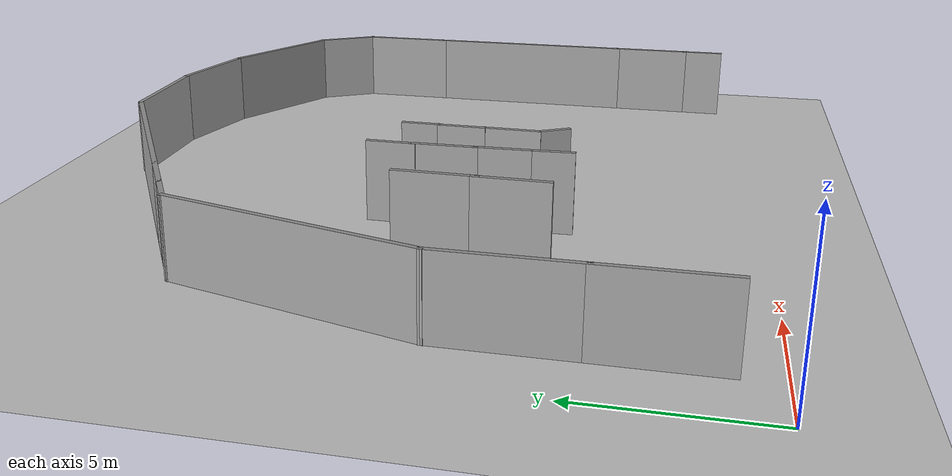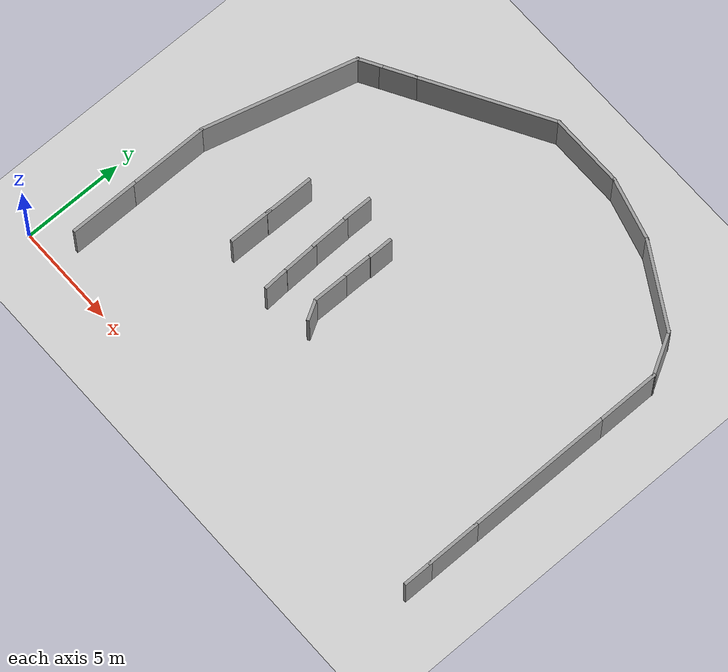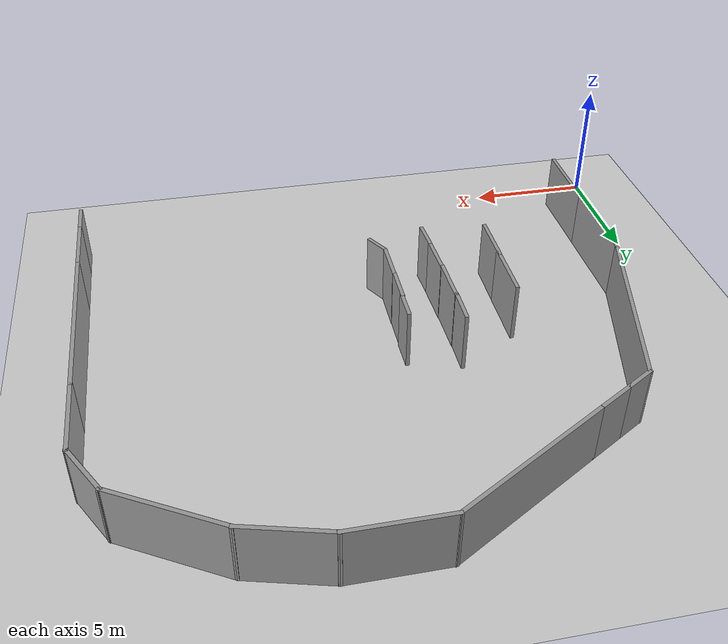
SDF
<sdf version="1.6">
 <world name="default">
  <model name="ground_plane">
   <static>1</static>
   <link name="link">
    <collision name="collision">
     <geometry><plane><normal>0 0 1</normal><size>100 100</size></plane></geometry>
     <surface><friction><ode><mu>100</mu><mu2>50</mu2></ode></friction></surface>
    </collision>
    <visual name="visual">
     <cast_shadows>0</cast_shadows>
     <geometry><plane><normal>0 0 1</normal><size>100 100</size></plane></geometry>
     <material>
      <script><uri>file://media/materials/scripts/gazebo.material</uri><name>Gazebo/Grey</name></script>
     </material>
    </visual>
   </link>
  </model>
  <model name="c-Snail_v3_clone">
   <link name="Wall_19">
    <pose>0.800174 -5.81597 0 0 -0 0</pose>
    <visual name="Wall_19_Visual">
     <pose>0 0 1.25 0 -0 0</pose>
     <geometry><box><size>2.25 0.15 2.5</size></box></geometry>
     <material>
      <script><uri>file://media/materials/scripts/gazebo.material</uri><name>Gazebo/Grey</name></script>
      <ambient>1 1 1 1</ambient>
     </material>
     <meta><layer>0</layer></meta>
    </visual>
    <collision name="Wall_19_Collision">
     <pose>0 0 1.25 0 -0 0</pose>
     <geometry><box><size>2.25 0.15 2.5</size></box></geometry>
     <surface>
      <friction>
       <ode><mu>1</mu><mu2>1</mu2><fdir1>0 0 0</fdir1><slip1>0</slip1><slip2>0</slip2></ode>
       <torsional>
        <coefficient>1</coefficient>
        <patch_radius>0</patch_radius>
        <surface_radius>0</surface_radius>
        <use_patch_radius>1</use_patch_radius>
        <ode><slip>0</slip></ode>
       </torsional>
      </friction>
      <bounce><restitution_coefficient>0</restitution_coefficient><threshold>1e+06</threshold></bounce>
      <contact>
       <collide_without_contact>0</collide_without_contact>
       <collide_without_contact_bitmask>1</collide_without_contact_bitmask>
       <collide_bitmask>1</collide_bitmask>
       <ode>
        <soft_cfm>0</soft_cfm>
        <soft_erp>0.2</soft_erp>
        <kp>1e+13</kp>
        <kd>1</kd>
        <max_vel>0.01</max_vel>
        <min_depth>0</min_depth>
       </ode>
       <bullet>
        <split_impulse>1</split_impulse>
        <split_impulse_penetration_threshold>-0.01</split_impulse_penetration_threshold>
        <soft_cfm>0</soft_cfm>
        <soft_erp>0.2</soft_erp>
        <kp>1e+13</kp>
        <kd>1</kd>
       </bullet>
      </contact>
     </surface>
    </collision>
   </link>
   <link name="Wall_20">
    <pose>2.90214 -5.80096 0 0 -0 0</pose>
    <visual name="Wall_20_Visual">
     <pose>0 0 1.25 0 -0 0</pose>
     <geometry><box><size>2.5 0.15 2.5</size></box></geometry>
     <material>
      <script><uri>file://media/materials/scripts/gazebo.material</uri><name>Gazebo/Grey</name></script>
      <ambient>1 1 1 1</ambient>
     </material>
     <meta><layer>0</layer></meta>
    </visual>
    <collision name="Wall_20_Collision">
     <pose>0 0 1.25 0 -0 0</pose>
     <geometry><box><size>2.5 0.15 2.5</size></box></geometry>
     <surface>
      <friction>
       <ode><mu>1</mu><mu2>1</mu2><fdir1>0 0 0</fdir1><slip1>0</slip1><slip2>0</slip2></ode>
       <torsional>
        <coefficient>1</coefficient>
        <patch_radius>0</patch_radius>
        <surface_radius>0</surface_radius>
        <use_patch_radius>1</use_patch_radius>
        <ode><slip>0</slip></ode>
       </torsional>
      </friction>
      <bounce><restitution_coefficient>0</restitution_coefficient><threshold>1e+06</threshold></bounce>
      <contact>
       <collide_without_contact>0</collide_without_contact>
       <collide_without_contact_bitmask>1</collide_without_contact_bitmask>
       <collide_bitmask>1</collide_bitmask>
       <ode>
        <soft_cfm>0</soft_cfm>
        <soft_erp>0.2</soft_erp>
        <kp>1e+13</kp>
        <kd>1</kd>
        <max_vel>0.01</max_vel>
        <min_depth>0</min_depth>
       </ode>
       <bullet>
        <split_impulse>1</split_impulse>
        <split_impulse_penetration_threshold>-0.01</split_impulse_penetration_threshold>
        <soft_cfm>0</soft_cfm>
        <soft_erp>0.2</soft_erp>
        <kp>1e+13</kp>
        <kd>1</kd>
       </bullet>
      </contact>
     </surface>
    </collision>
   </link>
   <link name="Wall_46">
    <pose>0.001242 -3.22352 -0 0 0 -0.065231</pose>
    <visual name="Wall_46_Visual">
     <pose>0 0 1.25 0 -0 0</pose>
     <geometry><box><size>1.25 0.15 2.5</size></box></geometry>
     <material>
      <script><uri>file://media/materials/scripts/gazebo.material</uri><name>Gazebo/Grey</name></script>
      <ambient>1 1 1 1</ambient>
     </material>
     <meta><layer>0</layer></meta>
    </visual>
    <collision name="Wall_46_Collision">
     <pose>0 0 1.25 0 -0 0</pose>
     <geometry><box><size>1.25 0.15 2.5</size></box></geometry>
     <surface>
      <friction>
       <ode><mu>1</mu><mu2>1</mu2><fdir1>0 0 0</fdir1><slip1>0</slip1><slip2>0</slip2></ode>
       <torsional>
        <coefficient>1</coefficient>
        <patch_radius>0</patch_radius>
        <surface_radius>0</surface_radius>
        <use_patch_radius>1</use_patch_radius>
        <ode><slip>0</slip></ode>
       </torsional>
      </friction>
      <bounce><restitution_coefficient>0</restitution_coefficient><threshold>1e+06</threshold></bounce>
      <contact>
       <collide_without_contact>0</collide_without_contact>
       <collide_without_contact_bitmask>1</collide_without_contact_bitmask>
       <collide_bitmask>1</collide_bitmask>
       <ode>
        <soft_cfm>0</soft_cfm>
        <soft_erp>0.2</soft_erp>
        <kp>1e+13</kp>
        <kd>1</kd>
        <max_vel>0.01</max_vel>
        <min_depth>0</min_depth>
       </ode>
       <bullet>
        <split_impulse>1</split_impulse>
        <split_impulse_penetration_threshold>-0.01</split_impulse_penetration_threshold>
        <soft_cfm>0</soft_cfm>
        <soft_erp>0.2</soft_erp>
        <kp>1e+13</kp>
        <kd>1</kd>
       </bullet>
      </contact>
     </surface>
    </collision>
   </link>
   <link name="Wall_47">
    <pose>1.4692 -3.29142 0 0 0 -0.040966</pose>
    <visual name="Wall_47_Visual">
     <pose>0 0 1.25 0 -0 0</pose>
     <geometry><box><size>1.75 0.15 2.5</size></box></geometry>
     <material>
      <script><uri>file://media/materials/scripts/gazebo.material</uri><name>Gazebo/Grey</name></script>
      <ambient>1 1 1 1</ambient>
     </material>
     <meta><layer>0</layer></meta>
    </visual>
    <collision name="Wall_47_Collision">
     <pose>0 0 1.25 0 -0 0</pose>
     <geometry><box><size>1.75 0.15 2.5</size></box></geometry>
     <surface>
      <friction>
       <ode><mu>1</mu><mu2>1</mu2><fdir1>0 0 0</fdir1><slip1>0</slip1><slip2>0</slip2></ode>
       <torsional>
        <coefficient>1</coefficient>
        <patch_radius>0</patch_radius>
        <surface_radius>0</surface_radius>
        <use_patch_radius>1</use_patch_radius>
        <ode><slip>0</slip></ode>
       </torsional>
      </friction>
      <bounce><restitution_coefficient>0</restitution_coefficient><threshold>1e+06</threshold></bounce>
      <contact>
       <collide_without_contact>0</collide_without_contact>
       <collide_without_contact_bitmask>1</collide_without_contact_bitmask>
       <collide_bitmask>1</collide_bitmask>
       <ode>
        <soft_cfm>0</soft_cfm>
        <soft_erp>0.2</soft_erp>
        <kp>1e+13</kp>
        <kd>1</kd>
        <max_vel>0.01</max_vel>
        <min_depth>0</min_depth>
       </ode>
       <bullet>
        <split_impulse>1</split_impulse>
        <split_impulse_penetration_threshold>-0.01</split_impulse_penetration_threshold>
        <soft_cfm>0</soft_cfm>
        <soft_erp>0.2</soft_erp>
        <kp>1e+13</kp>
        <kd>1</kd>
       </bullet>
      </contact>
     </surface>
    </collision>
   </link>
   <link name="Wall_48">
    <pose>3.18497 -3.36606 0 0 0 -0.02609</pose>
    <visual name="Wall_48_Visual">
     <pose>0 0 1.25 0 -0 0</pose>
     <geometry><box><size>2 0.15 2.5</size></box></geometry>
     <material>
      <script><uri>file://media/materials/scripts/gazebo.material</uri><name>Gazebo/Grey</name></script>
      <ambient>1 1 1 1</ambient>
     </material>
     <meta><layer>0</layer></meta>
    </visual>
    <collision name="Wall_48_Collision">
     <pose>0 0 1.25 0 -0 0</pose>
     <geometry><box><size>2 0.15 2.5</size></box></geometry>
     <surface>
      <friction>
       <ode><mu>1</mu><mu2>1</mu2><fdir1>0 0 0</fdir1><slip1>0</slip1><slip2>0</slip2></ode>
       <torsional>
        <coefficient>1</coefficient>
        <patch_radius>0</patch_radius>
        <surface_radius>0</surface_radius>
        <use_patch_radius>1</use_patch_radius>
        <ode><slip>0</slip></ode>
       </torsional>
      </friction>
      <bounce><restitution_coefficient>0</restitution_coefficient><threshold>1e+06</threshold></bounce>
      <contact>
       <collide_without_contact>0</collide_without_contact>
       <collide_without_contact_bitmask>1</collide_without_contact_bitmask>
       <collide_bitmask>1</collide_bitmask>
       <ode>
        <soft_cfm>0</soft_cfm>
        <soft_erp>0.2</soft_erp>
        <kp>1e+13</kp>
        <kd>1</kd>
        <max_vel>0.01</max_vel>
        <min_depth>0</min_depth>
       </ode>
       <bullet>
        <split_impulse>1</split_impulse>
        <split_impulse_penetration_threshold>-0.01</split_impulse_penetration_threshold>
        <soft_cfm>0</soft_cfm>
        <soft_erp>0.2</soft_erp>
        <kp>1e+13</kp>
        <kd>1</kd>
       </bullet>
      </contact>
     </surface>
    </collision>
   </link>
   <link name="Wall_49">
    <pose>4.78497 -3.4097 0 0 -0 0</pose>
    <visual name="Wall_49_Visual">
     <pose>0 0 1.25 0 -0 0</pose>
     <geometry><box><size>1.5 0.15 2.5</size></box></geometry>
     <material>
      <script><uri>file://media/materials/scripts/gazebo.material</uri><name>Gazebo/Grey</name></script>
      <ambient>1 1 1 1</ambient>
     </material>
     <meta><layer>0</layer></meta>
    </visual>
    <collision name="Wall_49_Collision">
     <pose>0 0 1.25 0 -0 0</pose>
     <geometry><box><size>1.5 0.15 2.5</size></box></geometry>
     <surface>
      <friction>
       <ode><mu>1</mu><mu2>1</mu2><fdir1>0 0 0</fdir1><slip1>0</slip1><slip2>0</slip2></ode>
       <torsional>
        <coefficient>1</coefficient>
        <patch_radius>0</patch_radius>
        <surface_radius>0</surface_radius>
        <use_patch_radius>1</use_patch_radius>
        <ode><slip>0</slip></ode>
       </torsional>
      </friction>
      <bounce><restitution_coefficient>0</restitution_coefficient><threshold>1e+06</threshold></bounce>
      <contact>
       <collide_without_contact>0</collide_without_contact>
       <collide_without_contact_bitmask>1</collide_without_contact_bitmask>
       <collide_bitmask>1</collide_bitmask>
       <ode>
        <soft_cfm>0</soft_cfm>
        <soft_erp>0.2</soft_erp>
        <kp>1e+13</kp>
        <kd>1</kd>
        <max_vel>0.01</max_vel>
        <min_depth>0</min_depth>
       </ode>
       <bullet>
        <split_impulse>1</split_impulse>
        <split_impulse_penetration_threshold>-0.01</split_impulse_penetration_threshold>
        <soft_cfm>0</soft_cfm>
        <soft_erp>0.2</soft_erp>
        <kp>1e+13</kp>
        <kd>1</kd>
       </bullet>
      </contact>
     </surface>
    </collision>
   </link>
   <link name="Wall_69">
    <pose>0.240975 -1.11854 0 0 0 -0.523599</pose>
    <visual name="Wall_69_Visual">
     <pose>0 0 1.25 0 -0 0</pose>
     <geometry><box><size>1 0.15 2.5</size></box></geometry>
     <material>
      <script><uri>file://media/materials/scripts/gazebo.material</uri><name>Gazebo/Grey</name></script>
      <ambient>1 1 1 1</ambient>
     </material>
     <meta><layer>0</layer></meta>
    </visual>
    <collision name="Wall_69_Collision">
     <pose>0 0 1.25 0 -0 0</pose>
     <geometry><box><size>1 0.15 2.5</size></box></geometry>
     <surface>
      <friction>
       <ode><mu>1</mu><mu2>1</mu2><fdir1>0 0 0</fdir1><slip1>0</slip1><slip2>0</slip2></ode>
       <torsional>
        <coefficient>1</coefficient>
        <patch_radius>0</patch_radius>
        <surface_radius>0</surface_radius>
        <use_patch_radius>1</use_patch_radius>
        <ode><slip>0</slip></ode>
       </torsional>
      </friction>
      <bounce><restitution_coefficient>0</restitution_coefficient><threshold>1e+06</threshold></bounce>
      <contact>
       <collide_without_contact>0</collide_without_contact>
       <collide_without_contact_bitmask>1</collide_without_contact_bitmask>
       <collide_bitmask>1</collide_bitmask>
       <ode>
        <soft_cfm>0</soft_cfm>
        <soft_erp>0.2</soft_erp>
        <kp>1e+13</kp>
        <kd>1</kd>
        <max_vel>0.01</max_vel>
        <min_depth>0</min_depth>
       </ode>
       <bullet>
        <split_impulse>1</split_impulse>
        <split_impulse_penetration_threshold>-0.01</split_impulse_penetration_threshold>
        <soft_cfm>0</soft_cfm>
        <soft_erp>0.2</soft_erp>
        <kp>1e+13</kp>
        <kd>1</kd>
       </bullet>
      </contact>
     </surface>
    </collision>
   </link>
   <link name="Wall_70">
    <pose>1.50322 -1.37769 0 0 -0 0</pose>
    <visual name="Wall_70_Visual">
     <pose>0 0 1.25 0 -0 0</pose>
     <geometry><box><size>1.75 0.15 2.5</size></box></geometry>
     <material>
      <script><uri>file://media/materials/scripts/gazebo.material</uri><name>Gazebo/Grey</name></script>
      <ambient>1 1 1 1</ambient>
     </material>
     <meta><layer>0</layer></meta>
    </visual>
    <collision name="Wall_70_Collision">
     <pose>0 0 1.25 0 -0 0</pose>
     <geometry><box><size>1.75 0.15 2.5</size></box></geometry>
     <surface>
      <friction>
       <ode><mu>1</mu><mu2>1</mu2><fdir1>0 0 0</fdir1><slip1>0</slip1><slip2>0</slip2></ode>
       <torsional>
        <coefficient>1</coefficient>
        <patch_radius>0</patch_radius>
        <surface_radius>0</surface_radius>
        <use_patch_radius>1</use_patch_radius>
        <ode><slip>0</slip></ode>
       </torsional>
      </friction>
      <bounce><restitution_coefficient>0</restitution_coefficient><threshold>1e+06</threshold></bounce>
      <contact>
       <collide_without_contact>0</collide_without_contact>
       <collide_without_contact_bitmask>1</collide_without_contact_bitmask>
       <collide_bitmask>1</collide_bitmask>
       <ode>
        <soft_cfm>0</soft_cfm>
        <soft_erp>0.2</soft_erp>
        <kp>1e+13</kp>
        <kd>1</kd>
        <max_vel>0.01</max_vel>
        <min_depth>0</min_depth>
       </ode>
       <bullet>
        <split_impulse>1</split_impulse>
        <split_impulse_penetration_threshold>-0.01</split_impulse_penetration_threshold>
        <soft_cfm>0</soft_cfm>
        <soft_erp>0.2</soft_erp>
        <kp>1e+13</kp>
        <kd>1</kd>
       </bullet>
      </contact>
     </surface>
    </collision>
   </link>
   <link name="Wall_71">
    <pose>3.08758 -1.38978 0 0 -0 0</pose>
    <visual name="Wall_71_Visual">
     <pose>0 0 1.25 0 -0 0</pose>
     <geometry><box><size>1.5 0.15 2.5</size></box></geometry>
     <material>
      <script><uri>file://media/materials/scripts/gazebo.material</uri><name>Gazebo/Grey</name></script>
      <ambient>1 1 1 1</ambient>
     </material>
     <meta><layer>0</layer></meta>
    </visual>
    <collision name="Wall_71_Collision">
     <pose>0 0 1.25 0 -0 0</pose>
     <geometry><box><size>1.5 0.15 2.5</size></box></geometry>
     <surface>
      <friction>
       <ode><mu>1</mu><mu2>1</mu2><fdir1>0 0 0</fdir1><slip1>0</slip1><slip2>0</slip2></ode>
       <torsional>
        <coefficient>1</coefficient>
        <patch_radius>0</patch_radius>
        <surface_radius>0</surface_radius>
        <use_patch_radius>1</use_patch_radius>
        <ode><slip>0</slip></ode>
       </torsional>
      </friction>
      <bounce><restitution_coefficient>0</restitution_coefficient><threshold>1e+06</threshold></bounce>
      <contact>
       <collide_without_contact>0</collide_without_contact>
       <collide_without_contact_bitmask>1</collide_without_contact_bitmask>
       <collide_bitmask>1</collide_bitmask>
       <ode>
        <soft_cfm>0</soft_cfm>
        <soft_erp>0.2</soft_erp>
        <kp>1e+13</kp>
        <kd>1</kd>
        <max_vel>0.01</max_vel>
        <min_depth>0</min_depth>
       </ode>
       <bullet>
        <split_impulse>1</split_impulse>
        <split_impulse_penetration_threshold>-0.01</split_impulse_penetration_threshold>
        <soft_cfm>0</soft_cfm>
        <soft_erp>0.2</soft_erp>
        <kp>1e+13</kp>
        <kd>1</kd>
       </bullet>
      </contact>
     </surface>
    </collision>
   </link>
   <link name="Wall_72">
    <pose>4.35541 -1.36839 0 0 0 -0.011462</pose>
    <visual name="Wall_72_Visual">
     <pose>0 0 1.25 0 -0 0</pose>
     <geometry><box><size>1.25 0.15 2.5</size></box></geometry>
     <material>
      <script><uri>file://media/materials/scripts/gazebo.material</uri><name>Gazebo/Grey</name></script>
      <ambient>1 1 1 1</ambient>
     </material>
     <meta><layer>0</layer></meta>
    </visual>
    <collision name="Wall_72_Collision">
     <pose>0 0 1.25 0 -0 0</pose>
     <geometry><box><size>1.25 0.15 2.5</size></box></geometry>
     <surface>
      <friction>
       <ode><mu>1</mu><mu2>1</mu2><fdir1>0 0 0</fdir1><slip1>0</slip1><slip2>0</slip2></ode>
       <torsional>
        <coefficient>1</coefficient>
        <patch_radius>0</patch_radius>
        <surface_radius>0</surface_radius>
        <use_patch_radius>1</use_patch_radius>
        <ode><slip>0</slip></ode>
       </torsional>
      </friction>
      <bounce><restitution_coefficient>0</restitution_coefficient><threshold>1e+06</threshold></bounce>
      <contact>
       <collide_without_contact>0</collide_without_contact>
       <collide_without_contact_bitmask>1</collide_without_contact_bitmask>
       <collide_bitmask>1</collide_bitmask>
       <ode>
        <soft_cfm>0</soft_cfm>
        <soft_erp>0.2</soft_erp>
        <kp>1e+13</kp>
        <kd>1</kd>
        <max_vel>0.01</max_vel>
        <min_depth>0</min_depth>
       </ode>
       <bullet>
        <split_impulse>1</split_impulse>
        <split_impulse_penetration_threshold>-0.01</split_impulse_penetration_threshold>
        <soft_cfm>0</soft_cfm>
        <soft_erp>0.2</soft_erp>
        <kp>1e+13</kp>
        <kd>1</kd>
       </bullet>
      </contact>
     </surface>
    </collision>
   </link>
   <static>1</static>
   <pose>12.5927 6.18782 2.49853 -3.14159 -0.001569 1.56269</pose>
  </model>
  <model name="cage_clone">
   <pose>12.6365 10.7675 2.4134 3.14085 -0 0</pose>
   <link name="Wall_12">
    <collision name="Wall_12_Collision">
     <geometry><box><size>3.5 0.15 2.5</size></box></geometry>
     <pose>0 0 1.25 0 -0 0</pose>
    </collision>
    <visual name="Wall_12_Visual">
     <pose>0 0 1.25 0 -0 0</pose>
     <geometry><box><size>3.5 0.15 2.5</size></box></geometry>
     <material>
      <script><uri>file://media/materials/scripts/gazebo.material</uri><name>Gazebo/Grey</name></script>
      <ambient>1 1 1 1</ambient>
     </material>
     <meta><layer>0</layer></meta>
    </visual>
    <pose>-10.7216 7.93424 0 0 -0 -1.5708</pose>
   </link>
   <link name="Wall_13">
    <collision name="Wall_13_Collision">
     <geometry><box><size>4 0.15 2.5</size></box></geometry>
     <pose>0 0 1.25 0 -0 0</pose>
    </collision>
    <visual name="Wall_13_Visual">
     <pose>0 0 1.25 0 -0 0</pose>
     <geometry><box><size>4 0.15 2.5</size></box></geometry>
     <material>
      <script><uri>file://media/materials/scripts/gazebo.material</uri><name>Gazebo/Grey</name></script>
      <ambient>1 1 1 1</ambient>
     </material>
     <meta><layer>0</layer></meta>
    </visual>
    <pose>-10.7216 4.33425 0 0 -0 -1.5708</pose>
   </link>
   <link name="Wall_14">
    <collision name="Wall_14_Collision">
     <geometry><box><size>7.75 0.15 2.5</size></box></geometry>
     <pose>0 0 1.25 0 -0 0</pose>
    </collision>
    <visual name="Wall_14_Visual">
     <pose>0 0 1.25 0 -0 0</pose>
     <geometry><box><size>7.75 0.15 2.5</size></box></geometry>
     <material>
      <script><uri>file://media/materials/scripts/gazebo.material</uri><name>Gazebo/Grey</name></script>
      <ambient>1 1 1 1</ambient>
     </material>
     <meta><layer>0</layer></meta>
    </visual>
    <pose>-9.73811 -1.26127 0 0 -0 -1.309</pose>
   </link>
   <link name="Wall_15">
    <collision name="Wall_15_Collision">
     <geometry><box><size>1.25 0.15 2.5</size></box></geometry>
     <pose>0 0 1.25 0 -0 0</pose>
    </collision>
    <visual name="Wall_15_Visual">
     <pose>0 0 1.25 0 -0 0</pose>
     <geometry><box><size>1.25 0.15 2.5</size></box></geometry>
     <material>
      <script><uri>file://media/materials/scripts/gazebo.material</uri><name>Gazebo/Grey</name></script>
      <ambient>1 1 1 1</ambient>
     </material>
     <meta><layer>0</layer></meta>
    </visual>
    <pose>-8.27828 -5.20679 0 0 -0 -0.523599</pose>
   </link>
   <link name="Wall_16">
    <collision name="Wall_16_Collision">
     <geometry><box><size>1.75 0.15 2.5</size></box></geometry>
     <pose>0 0 1.25 0 -0 0</pose>
    </collision>
    <visual name="Wall_16_Visual">
     <pose>0 0 1.25 0 -0 0</pose>
     <geometry><box><size>1.75 0.15 2.5</size></box></geometry>
     <material>
      <script><uri>file://media/materials/scripts/gazebo.material</uri><name>Gazebo/Grey</name></script>
      <ambient>1 1 1 1</ambient>
     </material>
     <meta><layer>0</layer></meta>
    </visual>
    <pose>-7.10914 -5.88179 0 0 -0 -0.523599</pose>
   </link>
   <link name="Wall_17">
    <collision name="Wall_17_Collision">
     <geometry><box><size>6.75 0.15 2.5</size></box></geometry>
     <pose>0 0 1.25 0 -0 0</pose>
    </collision>
    <visual name="Wall_17_Visual">
     <pose>0 0 1.25 0 -0 0</pose>
     <geometry><box><size>6.75 0.15 2.5</size></box></geometry>
     <material>
      <script><uri>file://media/materials/scripts/gazebo.material</uri><name>Gazebo/Grey</name></script>
      <ambient>1 1 1 1</ambient>
     </material>
     <meta><layer>0</layer></meta>
    </visual>
    <pose>-3.55844 -7.93179 0 0 -0 -0.523599</pose>
   </link>
   <link name="Wall_18">
    <collision name="Wall_18_Collision">
     <geometry><box><size>3.75 0.15 2.5</size></box></geometry>
     <pose>0 0 1.25 0 -0 0</pose>
    </collision>
    <visual name="Wall_18_Visual">
     <pose>0 0 1.25 0 -0 0</pose>
     <geometry><box><size>3.75 0.15 2.5</size></box></geometry>
     <material>
      <script><uri>file://media/materials/scripts/gazebo.material</uri><name>Gazebo/Grey</name></script>
      <ambient>1 1 1 1</ambient>
     </material>
     <meta><layer>0</layer></meta>
    </visual>
    <pose>1.09944 -9.58179 0 0 -0 0</pose>
   </link>
   <link name="Wall_19">
    <collision name="Wall_19_Collision">
     <geometry><box><size>3.25 0.15 2.5</size></box></geometry>
     <pose>0 0 1.25 0 -0 0</pose>
    </collision>
    <visual name="Wall_19_Visual">
     <pose>0 0 1.25 0 -0 0</pose>
     <geometry><box><size>3.25 0.15 2.5</size></box></geometry>
     <material>
      <script><uri>file://media/materials/scripts/gazebo.material</uri><name>Gazebo/Grey</name></script>
      <ambient>1 1 1 1</ambient>
     </material>
     <meta><layer>0</layer></meta>
    </visual>
    <pose>4.39663 -9.18062 0 0 -0 0.261799</pose>
   </link>
   <link name="Wall_20">
    <collision name="Wall_20_Collision">
     <geometry><box><size>4.5 0.15 2.5</size></box></geometry>
     <pose>0 0 1.25 0 -0 0</pose>
    </collision>
    <visual name="Wall_20_Visual">
     <pose>0 0 1.25 0 -0 0</pose>
     <geometry><box><size>4.5 0.15 2.5</size></box></geometry>
     <material>
      <script><uri>file://media/materials/scripts/gazebo.material</uri><name>Gazebo/Grey</name></script>
      <ambient>1 1 1 1</ambient>
     </material>
     <meta><layer>0</layer></meta>
    </visual>
    <pose>7.77742 -7.69195 0 0 -0 0.523599</pose>
   </link>
   <link name="Wall_21">
    <collision name="Wall_21_Collision">
     <geometry><box><size>2.25 0.15 2.5</size></box></geometry>
     <pose>0 0 1.25 0 -0 0</pose>
    </collision>
    <visual name="Wall_21_Visual">
     <pose>0 0 1.25 0 -0 0</pose>
     <geometry><box><size>2.25 0.15 2.5</size></box></geometry>
     <material>
      <script><uri>file://media/materials/scripts/gazebo.material</uri><name>Gazebo/Grey</name></script>
      <ambient>1 1 1 1</ambient>
     </material>
     <meta><layer>0</layer></meta>
    </visual>
    <pose>10.186 -5.69513 0 0 -0 1.0472</pose>
   </link>
   <link name="Wall_22">
    <collision name="Wall_22_Collision">
     <geometry><box><size>3.25 0.15 2.5</size></box></geometry>
     <pose>0 0 1.25 0 -0 0</pose>
    </collision>
    <visual name="Wall_22_Visual">
     <pose>0 0 1.25 0 -0 0</pose>
     <geometry><box><size>3.25 0.15 2.5</size></box></geometry>
     <material>
      <script><uri>file://media/materials/scripts/gazebo.material</uri><name>Gazebo/Grey</name></script>
      <ambient>1 1 1 1</ambient>
     </material>
     <meta><layer>0</layer></meta>
    </visual>
    <pose>10.711 -3.2358 0 0 -0 1.5708</pose>
   </link>
   <link name="Wall_23">
    <collision name="Wall_23_Collision">
     <geometry><box><size>7.25 0.15 2.5</size></box></geometry>
     <pose>0 0 1.25 0 -0 0</pose>
    </collision>
    <visual name="Wall_23_Visual">
     <pose>0 0 1.25 0 -0 0</pose>
     <geometry><box><size>7.25 0.15 2.5</size></box></geometry>
     <material>
      <script><uri>file://media/materials/scripts/gazebo.material</uri><name>Gazebo/Grey</name></script>
      <ambient>1 1 1 1</ambient>
     </material>
     <meta><layer>0</layer></meta>
    </visual>
    <pose>10.711 1.8642 0 0 -0 1.5708</pose>
   </link>
   <link name="Wall_24">
    <collision name="Wall_24_Collision">
     <geometry><box><size>2.75 0.15 2.5</size></box></geometry>
     <pose>0 0 1.25 0 -0 0</pose>
    </collision>
    <visual name="Wall_24_Visual">
     <pose>0 0 1.25 0 -0 0</pose>
     <geometry><box><size>2.75 0.15 2.5</size></box></geometry>
     <material>
      <script><uri>file://media/materials/scripts/gazebo.material</uri><name>Gazebo/Grey</name></script>
      <ambient>1 1 1 1</ambient>
     </material>
     <meta><layer>0</layer></meta>
    </visual>
    <pose>10.711 6.7142 0 0 -0 1.5708</pose>
   </link>
   <link name="Wall_25">
    <collision name="Wall_25_Collision">
     <geometry><box><size>1.5 0.15 2.5</size></box></geometry>
     <pose>0 0 1.25 0 -0 0</pose>
    </collision>
    <visual name="Wall_25_Visual">
     <pose>0 0 1.25 0 -0 0</pose>
     <geometry><box><size>1.5 0.15 2.5</size></box></geometry>
     <material>
      <script><uri>file://media/materials/scripts/gazebo.material</uri><name>Gazebo/Grey</name></script>
      <ambient>1 1 1 1</ambient>
     </material>
     <meta><layer>0</layer></meta>
    </visual>
    <pose>10.711 8.6892 0 0 -0 1.5708</pose>
   </link>
   <static>1</static>
  </model>
 </world>
</sdf>
